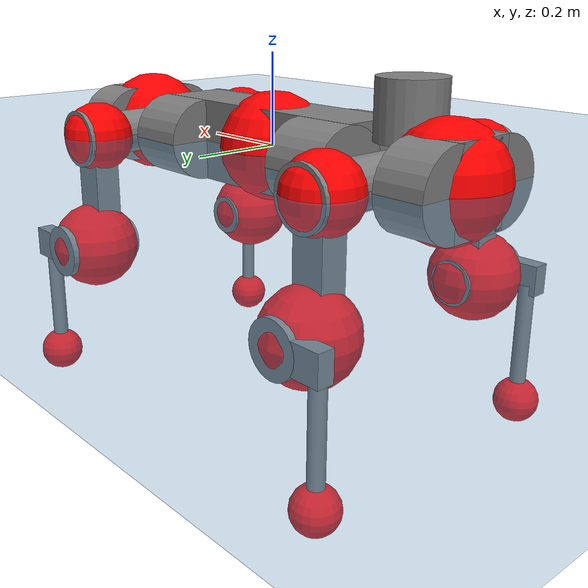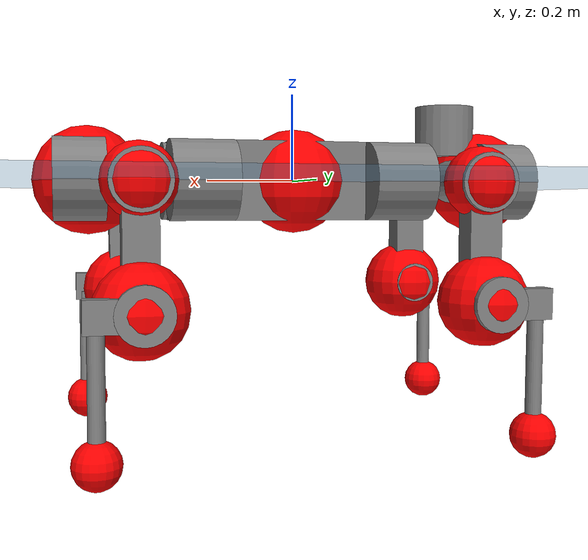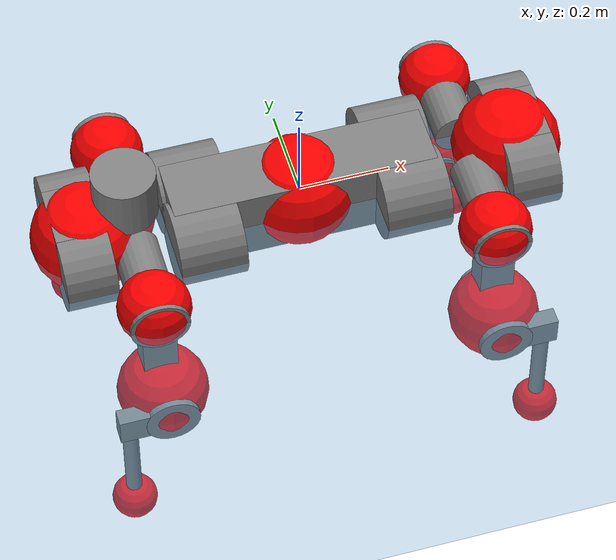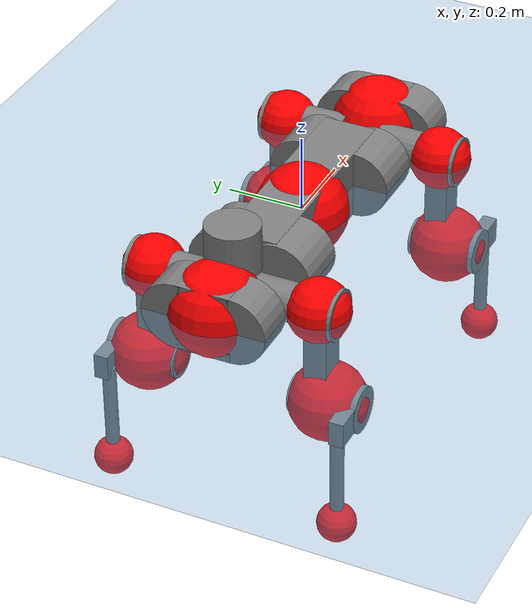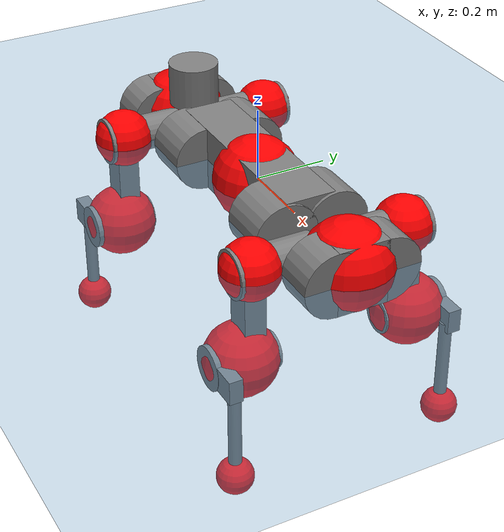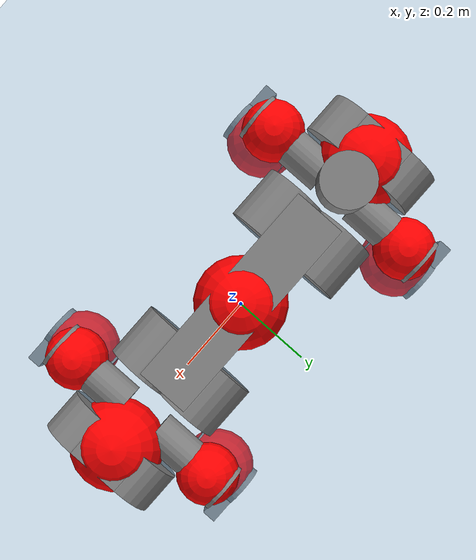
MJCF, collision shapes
<mujoco model="anymal_c">
  <compiler angle="radian" assetdir="assets" balanceinertia="true" inertiafromgeom="false"/>

  <option timestep="0.005" density="1.2" viscosity="2e-05"/>

  <size nkey="1"/>

  <visual>
    <quality shadowsize="8192"/>
    <map shadowclip="0.5"/>
  </visual>

  <default>
    <default class="/">
      <material specular="0" shininess="0.25"/>
      <geom contype="0" conaffinity="0" group="1" solref="-1000 -80"/>
      <site size="0.01 0.005 0.005" group="5"/>
      <general forcelimited="true" forcerange="-80 80" biastype="affine" gainprm="80" biasprm="0 -80 -2"/>
      <default class="anymal_c">
        <joint armature="0.01" damping="0.01" frictionloss="0.1"/>
        <default class="visual">
          <geom type="mesh" group="2"/>
          <default class="visual_zflip"/>
        </default>
        <default class="collision">
          <geom type="cylinder" group="3"/>
          <default class="foot">
            <geom size="0.03 0 0" type="sphere" condim="6" priority="1" friction="0.8 0.02 0.01" solimp="0.015 1 0.03"/>
          </default>
        </default>
      </default>
      <default class="reward_collision_sphere">
        <geom group="5" rgba="1 0 0 1"/>
      </default>
    </default>
  </default>

  <asset>
    <texture type="skybox" colorspace="auto" name="//unnamed_texture_0" builtin="gradient" rgb1="0.95 0.95 0.95" rgb2="0.95 0.95 0.95" width="100" height="600"/>
    <texture type="2d" colorspace="auto" name="texplane" builtin="checker" rgb1="0.345 0.575 0.748" rgb2="0.345 0.575 0.748" markrgb="1 1 1" width="512" height="512"/>
    <texture type="2d" colorspace="linear" name="base" file="base.png"/>
    <texture type="2d" colorspace="linear" name="top_shell" file="top_shell.png"/>
    <texture type="2d" colorspace="linear" name="bottom_shell" file="bottom_shell.png"/>
    <texture type="2d" colorspace="linear" name="remote" file="remote.png"/>
    <texture type="2d" colorspace="linear" name="hatch" file="hatch.png"/>
    <texture type="2d" colorspace="linear" name="handle" file="handle.png"/>
    <texture type="2d" colorspace="linear" name="face" file="face.png"/>
    <texture type="2d" colorspace="linear" name="battery" file="battery.png"/>
    <texture type="2d" colorspace="linear" name="lidar_cage" file="lidar_cage.png"/>
    <texture type="2d" colorspace="linear" name="depth_camera" file="depth_camera.png"/>
    <texture type="2d" colorspace="linear" name="wide_angle_camera" file="wide_angle_camera.png"/>
    <texture type="2d" colorspace="linear" name="lidar" file="lidar.png"/>
    <texture type="2d" colorspace="linear" name="drive" file="drive.png"/>
    <texture type="2d" colorspace="linear" name="hip_l" file="hip_l.png"/>
    <texture type="2d" colorspace="linear" name="shank_l" file="shank_l.png"/>
    <texture type="2d" colorspace="linear" name="foot" file="foot.png"/>
    <texture type="2d" colorspace="linear" name="thigh" file="thigh.png"/>
    <texture type="2d" colorspace="linear" name="shank_r" file="shank_r.png"/>
    <texture type="2d" colorspace="linear" name="hip_r" file="hip_r.png"/>
    <material name="MatPlane" class="/" texture="texplane" texuniform="true" texrepeat="2 2" specular="0.9" shininess="0.5"/>
    <material name="black_plastic" class="/" rgba="0.007 0.007 0.007 1"/>
    <material name="green" class="/" rgba="0.052 0.178 0.033 1"/>
    <material name="red" class="/" rgba="0.178 0.006 0.005 1"/>
    <material name="yellow" class="/" rgba="0.178 0.119 0.006 1"/>
    <material name="lwl" class="/" rgba="0.8 0.8 0.8 1"/>
    <material name="base" class="/" texture="base"/>
    <material name="top_shell" class="/" texture="top_shell"/>
    <material name="bottom_shell" class="/" texture="bottom_shell"/>
    <material name="hip_l" class="/" texture="hip_l"/>
    <material name="thigh" class="/" texture="thigh"/>
    <material name="shank_l" class="/" texture="shank_l"/>
    <material name="foot" class="/" texture="foot"/>
    <material name="hip_r" class="/" texture="hip_r"/>
    <material name="shank" class="/" texture="shank_r"/>
    <material name="hatch" class="/" texture="hatch"/>
    <material name="remote" class="/" texture="remote"/>
    <material name="handle" class="/" texture="handle"/>
    <material name="face" class="/" texture="face"/>
    <material name="depth_camera" class="/" texture="depth_camera"/>
    <material name="wide_angle_camera" class="/" texture="wide_angle_camera"/>
    <material name="battery" class="/" texture="battery"/>
    <material name="lidar_cage" class="/" texture="lidar_cage"/>
    <material name="lidar" class="/" texture="lidar"/>
    <material name="drive" class="/" texture="drive"/>
    <mesh name="base_0" class="/" file="base_0.obj"/>
    <mesh name="base_1" class="/" file="base_1.obj"/>
    <mesh name="base_2" class="/" file="base_2.obj"/>
    <mesh name="base_3" class="/" file="base_3.obj"/>
    <mesh name="base_4" class="/" file="base_4.obj"/>
    <mesh name="base_5" class="/" file="base_5.obj"/>
    <mesh name="top_shell" class="/" file="top_shell.obj"/>
    <mesh name="bottom_shell" class="/" file="bottom_shell.obj"/>
    <mesh name="remote" class="/" file="remote.obj"/>
    <mesh name="handle" class="/" file="handle.obj"/>
    <mesh name="face" class="/" file="face.obj"/>
    <mesh name="wide_angle_camera" class="/" file="wide_angle_camera.obj"/>
    <mesh name="depth_camera" class="/" file="depth_camera.obj"/>
    <mesh name="battery" class="/" file="battery.obj"/>
    <mesh name="lidar_cage" class="/" file="lidar_cage.obj"/>
    <mesh name="lidar" class="/" file="lidar.obj"/>
    <mesh name="drive" class="/" file="drive.obj"/>
    <mesh name="hip_l" class="/" file="hip_l.obj"/>
    <mesh name="thigh" class="/" file="thigh.obj"/>
    <mesh name="shank_l" class="/" file="shank_l.obj"/>
    <mesh name="foot" class="/" file="foot.obj"/>
    <mesh name="hip_r" class="/" file="hip_r.obj"/>
    <mesh name="hatch" class="/" file="hatch.obj"/>
    <mesh name="shank_r" class="/" file="shank_r.obj"/>
  </asset>

  <worldbody>
    <geom name="floor" class="/" size="100 100 0.125" type="plane" group="0" material="MatPlane"/>
    <light name="toplight_shadow" class="/" pos="0 0 5" dir="0.0990148 0.0990148 -0.990148" type="directional" ambient="0.04 0.04 0.04" diffuse="0.55 0.55 0.55" specular="0.12 0.12 0.12"/>
    <light name="toplight_fill" class="/" pos="0 0 5" dir="0.0990148 0.0990148 -0.990148" type="directional" castshadow="false" ambient="0.04 0.04 0.04" diffuse="0.3 0.3 0.3" specular="0.08 0.08 0.08"/>
    <body name="trunk" childclass="anymal_c" pos="-0.00272284 -0.00193181 0.000321613" quat="0.999999 -0.00110437 -0.000540584 0.00012502">
      <inertial pos="-0.000143789 0.000378994 0.0452314" quat="0.50038 0.499803 0.498708 0.501106" mass="18.4834" diaginertia="0.776635 0.74763 0.138133"/>
      <joint name="//unnamed_joint_0" type="free" armature="0" damping="0" frictionloss="0"/>
      <geom name="//unnamed_geom_1" class="visual" material="green" mesh="base_0"/>
      <geom name="//unnamed_geom_2" class="visual" material="yellow" mesh="base_1"/>
      <geom name="//unnamed_geom_3" class="visual" material="red" mesh="base_2"/>
      <geom name="//unnamed_geom_4" class="visual" material="black_plastic" mesh="base_3"/>
      <geom name="//unnamed_geom_5" class="visual" material="lwl" mesh="base_4"/>
      <geom name="//unnamed_geom_6" class="visual" material="base" mesh="base_5"/>
      <geom name="trunk_1" class="collision" size="0.288797 0.0697096 0.0896266" type="box"/>
      <geom name="trunk_2" class="collision" size="0.0896266 0.0721992" pos="0.226051 0.07272 0" quat="0.707107 0 0.707107 0"/>
      <geom name="trunk_3" class="collision" size="0.0896266 0.0721992" pos="-0.226051 0.07272 0" quat="0.707107 0 0.707107 0"/>
      <geom name="trunk_4" class="collision" size="0.0896266 0.0721992" pos="0.226051 -0.07272 0" quat="0.707107 0 0.707107 0"/>
      <geom name="trunk_5" class="collision" size="0.0896266 0.0721992" pos="-0.226051 -0.07272 0" quat="0.707107 0 0.707107 0"/>
      <geom name="//unnamed_geom_12" class="visual" material="top_shell" mesh="top_shell"/>
      <geom name="//unnamed_geom_13" class="visual" material="bottom_shell" mesh="bottom_shell"/>
      <geom name="//unnamed_geom_14" class="visual" material="remote" mesh="remote"/>
      <geom name="//unnamed_geom_15" class="visual" material="handle" mesh="handle"/>
      <geom name="//unnamed_geom_16" class="visual" pos="0.430797 0 0" quat="1 0 0 0" material="face" mesh="face"/>
      <geom name="trunk_6" class="collision" size="0.0547718 0.0697096 0.0896266" pos="0.487959 0 0" type="box"/>
      <geom name="//unnamed_geom_18" class="collision" size="0.0896266 0.0547718" pos="0.487959 0.07272 0" quat="0.707107 0 0.707107 0"/>
      <geom name="//unnamed_geom_19" class="collision" size="0.0896266 0.0547718" pos="0.487959 -0.07272 0" quat="0.707107 0 0.707107 0"/>
      <geom name="//unnamed_geom_20" class="visual" pos="0.479795 0 -0.0255664" quat="0.965926 0 0.258819 0" material="depth_camera" mesh="depth_camera"/>
      <geom name="//unnamed_geom_21" class="visual" pos="0.533169 0 0.0136134" material="wide_angle_camera" mesh="wide_angle_camera"/>
      <geom name="//unnamed_geom_22" class="visual_zflip" pos="-0.430797 0 0" quat="0 0 0 1" material="face" mesh="face"/>
      <geom name="trunk_7" class="collision" size="0.0547718 0.0697096 0.0896266" pos="-0.487959 0 0" quat="0 0 0 1" type="box"/>
      <geom name="//unnamed_geom_24" class="collision" size="0.0896266 0.0547718" pos="-0.487959 -0.07272 0" quat="0 -0.707107 0 0.707107"/>
      <geom name="//unnamed_geom_25" class="collision" size="0.0896266 0.0547718" pos="-0.487959 0.07272 0" quat="0 -0.707107 0 0.707107"/>
      <geom name="//unnamed_geom_26" class="visual" pos="-0.479795 0 -0.0255664" quat="0 -0.258819 0 0.965926" material="depth_camera" mesh="depth_camera"/>
      <geom name="//unnamed_geom_27" class="visual_zflip" pos="-0.533169 0 0.0136134" quat="0 0 0 1" material="wide_angle_camera" mesh="wide_angle_camera"/>
      <geom name="//unnamed_geom_28" class="visual" material="battery" mesh="battery"/>
      <geom name="//unnamed_geom_29" class="visual" pos="0 0.0794196 0.027405" quat="0.683013 -0.183013 0.183013 0.683013" material="depth_camera" mesh="depth_camera"/>
      <geom name="//unnamed_geom_30" class="visual" pos="0 -0.0794196 0.027405" quat="0.683013 0.183013 0.183013 -0.683013" material="depth_camera" mesh="depth_camera"/>
      <geom name="//unnamed_geom_31" class="visual" pos="-0.378311 0 0.0668394" quat="1 0 0 0" material="lidar_cage" mesh="lidar_cage"/>
      <geom name="trunk_8" class="collision" size="0.0697096 0.0597511" pos="-0.378311 0 0.121402"/>
      <geom name="//unnamed_geom_33" class="visual" pos="-0.378311 -1.80724e-07 0.129314" quat="0.707107 0 0 -0.707107" material="lidar" mesh="lidar"/>
      <geom name="//unnamed_geom_34" class="visual" pos="0.311691 0.107995 2.23349e-09" quat="0.258819 0.965926 0 0" material="drive" mesh="drive"/>
      <geom name="//unnamed_geom_35" class="visual" pos="0.311691 -0.107995 -2.23349e-09" quat="0.258819 -0.965926 0 0" material="drive" mesh="drive"/>
      <geom name="//unnamed_geom_36" class="visual" pos="-0.311691 0.107995 -2.23349e-09" quat="0 0 0.965926 -0.258819" material="drive" mesh="drive"/>
      <geom name="//unnamed_geom_37" class="visual" pos="-0.311691 -0.107995 2.23349e-09" quat="0 0 -0.965926 -0.258819" material="drive" mesh="drive"/>
      <geom name="//unnamed_geom_38" class="visual" pos="0.120561 0 0.0663847" quat="1 0 0 0" material="hatch" mesh="hatch"/>
      <geom name="//unnamed_geom_39" class="reward_collision_sphere" size="0.119502"/>
      <geom name="//unnamed_geom_40" class="reward_collision_sphere" size="0.119502" pos="0.467693 0 0"/>
      <geom name="//unnamed_geom_41" class="reward_collision_sphere" size="0.119502" pos="-0.467693 0 0"/>
      <site name="imu" pos="0.26115 0.00606185 0.0471148" size="0.00995851"/>
      <camera name="track" pos="0 -2.07771 0" quat="0.707107 0.707107 0 0" mode="trackcom"/>
      <camera name="ego_camera" pos="0.467693 0 -0.0363752" quat="-0.5 -0.5 0.5 0.5"/>
      <body name="LF_HIP" pos="0.311658 0.107285 0.000416813" quat="0.257761 0.966208 -0.000473592 0.000395972">
        <inertial pos="0.0563017 -0.016212 -0.00817748" quat="-0.127552 0.711313 -0.135907 0.677712" mass="2.85624" diaginertia="0.00741181 0.00593876 0.00213782"/>
        <joint name="LF_HAA" pos="0 0 0" axis="0.999993 -0.00026448 0.00378196" range="-0.726385 0.436719" armature="0.0110997" damping="0.000692955" frictionloss="0.0990842"/>
        <geom name="//unnamed_geom_42" class="visual" pos="0 0.000131386 -2.15801e-05" quat="0.258819 -0.965926 0 0" material="hip_l" mesh="hip_l"/>
        <geom name="//unnamed_geom_43" class="visual" pos="0.0622551 -0.0753832 -0.0425648" quat="0.183013 -0.683013 0.683013 0.183013" material="drive" mesh="drive"/>
        <geom name="//unnamed_geom_44" class="collision" size="0.0497926 0.0697096" pos="0.0622551 -0.0124245 -0.00627927" quat="-0.353553 -0.612372 0.612372 -0.353553"/>
        <body name="LF_THIGH" pos="0.0633244 -0.0771164 -0.0383239" quat="0.182772 -0.682944 0.683103 0.183171">
          <inertial pos="0.034911 0.000527011 -0.220638" quat="0.993291 -0.00445935 -0.0805502 0.0828506" mass="3.06103" diaginertia="0.0365379 0.0355739 0.00260473"/>
          <joint name="LF_HFE" pos="0 0 0" axis="0.999993 -0.00203652 -0.00309123" stiffness="0.0133235" range="-3.19424 3.18287" armature="0.0111014" damping="0" frictionloss="0.102148"/>
          <geom name="//unnamed_geom_45" class="visual" pos="9.15229e-06 1.44219e-08 0" quat="0.707107 0 0 -0.707107" material="thigh" mesh="thigh"/>
          <geom name="//unnamed_geom_46" class="collision" size="0.0647303 0.039834" pos="0.0415727 0 0" quat="0.5 0.5 -0.5 -0.5"/>
          <geom name="//unnamed_geom_47" class="collision" size="0.0373444 0.0298755 0.140728" pos="0.0311795 0 -0.128508" quat="0.707107 0 0 -0.707107" type="box"/>
          <geom name="//unnamed_geom_48" class="visual" pos="0.104243 0 -0.259173" quat="1 0 0 0" material="drive" mesh="drive"/>
          <geom name="//unnamed_geom_49" class="collision" size="0.0497926 0.0697096" pos="0.0314913 0 -0.259173" quat="0.707107 0 0.707107 0"/>
          <geom name="//unnamed_geom_50" class="reward_collision_sphere" size="0.0796681" pos="0.0259829 0 0"/>
          <body name="LF_SHANK" pos="0.103596 -0.000851871 -0.259703" quat="1 -0.000559074 -0.000212989 -0.000448871">
            <inertial pos="0.00689502 -0.0628358 -0.0755914" quat="0.99362 -0.112064 -0.000932498 -0.0126295" mass="0.574536" diaginertia="0.0124534 0.0112711 0.000681826"/>
            <joint name="LF_KFE" pos="0 0 0" axis="0.999983 0.00414921 0.00399304" range="-3.14248 3.08785" armature="0.00948856" damping="0.0101679" frictionloss="0.102501"/>
            <geom name="//unnamed_geom_51" class="visual" pos="2.98436e-06 1.59128e-05 0" quat="0.707107 0 0 -0.707107" material="shank_l" mesh="shank_l"/>
            <geom name="LF_kfe_act" class="collision" size="0.0597511 0.019917" pos="0.0207863 0 0" quat="0.5 0.5 -0.5 -0.5"/>
            <geom name="//unnamed_geom_53" class="collision" size="0.0572604 0.03361 0.0189212" pos="0.0207863 -0.0597332 0" quat="0.5 0.5 -0.5 -0.5" type="box"/>
            <geom name="//unnamed_geom_54" class="visual" pos="0.0135631 -0.0913623 -0.307343" quat="0.382683 0 0 -0.92388" material="foot" mesh="foot"/>
            <geom name="LF_calf" class="collision" size="0.0174274 0.140666" pos="0.0135631 -0.0913674 -0.153672" quat="0.707107 0 0 -0.707107"/>
            <geom name="LF_foot" class="foot" size="0.0317326" pos="0.0135631 -0.0913674 -0.286882" quat="0.707107 0 0 -0.707107"/>
            <geom name="//unnamed_geom_57" class="reward_collision_sphere" size="0.0995851" pos="-0.0519658 0 0"/>
            <geom name="//unnamed_geom_58" class="reward_collision_sphere" size="0.0497926" pos="0.0135631 -0.0913674 -0.286882"/>
            <site name="LF_foot" class="foot" pos="0.0135631 -0.0913674 -0.286882" quat="0.707107 0 0 -0.707107" size="0.00995851"/>
          </body>
        </body>
      </body>
      <body name="RF_HIP" pos="0.312378 -0.106042 0.00187976" quat="0.258885 -0.965908 -8.6696e-06 3.96552e-05">
        <inertial pos="0.0614356 0.015374 -0.0075247" quat="0.136302 0.677545 0.12961 0.711025" mass="2.89551" diaginertia="0.00734019 0.00617505 0.00205536"/>
        <joint name="RF_HAA" pos="0 0 0" axis="1 -0.000262575 -0.000405024" range="-0.472734 0.729381" armature="0.00863864" damping="0.00937652" frictionloss="0.11308"/>
        <geom name="//unnamed_geom_59" class="visual" pos="0 -0.000131385 -2.158e-05" quat="0.258819 0.965926 0 0" material="hip_r" mesh="hip_r"/>
        <geom name="//unnamed_geom_60" class="visual" pos="0.0622551 0.0753832 -0.0425648" quat="0.183013 0.683013 0.683013 -0.183013" material="drive" mesh="drive"/>
        <geom name="//unnamed_geom_61" class="collision" size="0.0497926 0.0697096" pos="0.0622551 0.0124245 -0.00627927" quat="-0.353553 0.612372 0.612372 0.353553"/>
        <body name="RF_THIGH" pos="0.061686 0.0756452 -0.0360212" quat="0.182163 0.683751 0.682665 -0.1824">
          <inertial pos="0.030088 -0.00278938 -0.222015" quat="0.992981 -0.00422072 -0.0778855 0.0889105" mass="2.953" diaginertia="0.036851 0.0363922 0.00253932"/>
          <joint name="RF_HFE" pos="0 0 0" axis="0.999992 0.00382974 -0.000599762" stiffness="0.0079706" range="-3.12426 3.1491" armature="0.00996065" damping="0.00974689" frictionloss="0.0993384"/>
          <geom name="//unnamed_geom_62" class="visual" pos="9.15229e-06 1.44219e-08 0" quat="0.707107 0 0 -0.707107" material="thigh" mesh="thigh"/>
          <geom name="//unnamed_geom_63" class="collision" size="0.0647303 0.039834" pos="0.0415727 0 0" quat="0.5 0.5 0.5 0.5"/>
          <geom name="//unnamed_geom_64" class="collision" size="0.0373444 0.0298755 0.140728" pos="0.0311795 0 -0.128508" quat="0.707107 0 0 0.707107" type="box"/>
          <geom name="//unnamed_geom_65" class="visual" pos="0.104243 0 -0.259173" quat="1 0 0 0" material="drive" mesh="drive"/>
          <geom name="//unnamed_geom_66" class="collision" size="0.0497926 0.0697096" pos="0.0314913 0 -0.259173" quat="0.707107 0 0.707107 0"/>
          <geom name="//unnamed_geom_67" class="reward_collision_sphere" size="0.0796681" pos="0.0259829 0 0"/>
          <body name="RF_SHANK" pos="0.105559 -0.000321056 -0.257404" quat="1 -3.54715e-05 4.29951e-05 -0.000150102">
            <inertial pos="0.00672612 0.0635312 -0.0721779" quat="0.993104 0.114959 0.000498334 0.0230034" mass="0.591753" diaginertia="0.0131285 0.0112335 0.000722844"/>
            <joint name="RF_KFE" pos="0 0 0" axis="0.999906 0.00339013 0.0132947" range="-3.12515 3.14257" armature="0.0101398" damping="0.0125783" frictionloss="0.0942994"/>
            <geom name="//unnamed_geom_68" class="visual" pos="2.98434e-06 -1.59127e-05 0" quat="0.707107 0 0 0.707107" material="shank" mesh="shank_r"/>
            <geom name="RF_kfe_act" class="collision" size="0.0597511 0.019917" pos="0.0207863 0 0" quat="0.5 0.5 0.5 0.5"/>
            <geom name="//unnamed_geom_70" class="collision" size="0.0572604 0.03361 0.0189212" pos="0.0207863 0.0597332 0" quat="0.5 0.5 0.5 0.5" type="box"/>
            <geom name="//unnamed_geom_71" class="visual" pos="0.0135631 0.0913623 -0.307343" quat="0.382683 0 0 0.92388" material="foot" mesh="foot"/>
            <geom name="RF_calf" class="collision" size="0.0174274 0.140666" pos="0.0135631 0.0913674 -0.153672" quat="0.707107 0 0 0.707107"/>
            <geom name="RF_foot" class="foot" size="0.0291737" pos="0.0135631 0.0913674 -0.286882" quat="0.707107 0 0 0.707107"/>
            <geom name="//unnamed_geom_74" class="reward_collision_sphere" size="0.0995851" pos="-0.0519658 0 0"/>
            <geom name="//unnamed_geom_75" class="reward_collision_sphere" size="0.0497926" pos="0.0135631 0.0913674 -0.286882"/>
            <site name="RF_foot" class="foot" pos="0.0135631 0.0913674 -0.286882" quat="0.707107 0 0 0.707107" size="0.00995851"/>
          </body>
        </body>
      </body>
      <body name="LH_HIP" pos="-0.310642 0.106834 0.00173352" quat="0.000424801 0.00105898 0.966041 -0.258387">
        <inertial pos="0.0617434 0.0167862 -0.00765656" quat="0.135727 0.679255 0.127793 0.709831" mass="2.72651" diaginertia="0.00715841 0.00615007 0.00208628"/>
        <joint name="LH_HAA" pos="0 0 0" axis="0.999984 -0.0048966 -0.00276797" range="-0.473482 0.709176" armature="0.0100008" damping="0.00995937" frictionloss="0.0977701"/>
        <geom name="//unnamed_geom_76" class="visual" pos="0 -0.000131385 -2.158e-05" quat="-0.258819 -0.965926 0 0" material="hip_r" mesh="hip_r"/>
        <geom name="//unnamed_geom_77" class="visual" pos="0.0622551 0.0753832 -0.0425648" quat="0.183013 0.683013 0.683013 -0.183013" material="drive" mesh="drive"/>
        <geom name="//unnamed_geom_78" class="collision" size="0.0497926 0.0697096" pos="0.0622551 0.0124245 -0.00627927" quat="-0.353553 0.612372 0.612372 0.353553"/>
        <body name="LH_THIGH" pos="0.0588657 0.0757567 -0.0363158" quat="0.18377 0.682716 0.683329 -0.182178">
          <inertial pos="0.0318252 0.000811633 -0.222392" quat="0.992441 0.00388204 -0.0752432 0.09687" mass="2.93203" diaginertia="0.0362042 0.0350672 0.00257625"/>
          <joint name="LH_HFE" pos="0 0 0" axis="0.999991 -0.00433873 -0.000397345" range="-3.12673 3.13635" armature="0.00917331" damping="0" frictionloss="0.102643"/>
          <geom name="//unnamed_geom_79" class="visual" pos="9.15229e-06 1.44219e-08 0" quat="0.707107 0 0 -0.707107" material="thigh" mesh="thigh"/>
          <geom name="//unnamed_geom_80" class="collision" size="0.0647303 0.039834" pos="0.0415727 0 0" quat="0.5 0.5 -0.5 -0.5"/>
          <geom name="//unnamed_geom_81" class="collision" size="0.0373444 0.0298755 0.140728" pos="0.0311795 0 -0.128508" quat="0.707107 0 0 -0.707107" type="box"/>
          <geom name="//unnamed_geom_82" class="visual" pos="0.104243 0 -0.259173" quat="1 0 0 0" material="drive" mesh="drive"/>
          <geom name="//unnamed_geom_83" class="collision" size="0.0497926 0.0697096" pos="0.0314913 0 -0.259173" quat="0.707107 0 0.707107 0"/>
          <geom name="//unnamed_geom_84" class="reward_collision_sphere" size="0.0796681" pos="0.0259829 0 0"/>
          <body name="LH_SHANK" pos="0.103504 -0.00118178 -0.259134" quat="1 8.51768e-05 0.000180983 5.59348e-05">
            <inertial pos="0.00554279 0.0634466 -0.072246" quat="0.992916 0.116006 -0.00123902 0.0256774" mass="0.577227" diaginertia="0.0123421 0.0112242 0.000690238"/>
            <joint name="LH_KFE" pos="0 0 0" axis="0.999998 0.00128231 0.00162338" range="-3.12268 3.13886" armature="0.00997243" damping="0" frictionloss="0.097163"/>
            <geom name="//unnamed_geom_85" class="visual" pos="2.98434e-06 -1.59127e-05 0" quat="-0.707107 0 0 -0.707107" material="shank" mesh="shank_r"/>
            <geom name="LH_kfe_act" class="collision" size="0.0597511 0.019917" pos="0.0207863 0 0" quat="0.5 0.5 -0.5 -0.5"/>
            <geom name="//unnamed_geom_87" class="collision" size="0.0572604 0.03361 0.0189212" pos="0.0207863 0.0597332 0" quat="0.5 0.5 -0.5 -0.5" type="box"/>
            <geom name="//unnamed_geom_88" class="visual" pos="0.0135631 0.0913623 -0.307343" quat="-0.382683 0 0 -0.92388" material="foot" mesh="foot"/>
            <geom name="LH_calf" class="collision" size="0.0174274 0.140666" pos="0.0135631 0.0913674 -0.153672" quat="0.707107 0 0 -0.707107"/>
            <geom name="LH_foot" class="foot" size="0.0329186" pos="0.0135631 0.0913674 -0.286882" quat="0.707107 0 0 -0.707107"/>
            <geom name="//unnamed_geom_91" class="reward_collision_sphere" size="0.0995851" pos="-0.0519658 0 0"/>
            <geom name="//unnamed_geom_92" class="reward_collision_sphere" size="0.0497926" pos="0.0135631 0.0913674 -0.286882"/>
            <site name="LH_foot" class="foot" pos="0.0135631 0.0913674 -0.286882" quat="0.707107 0 0 -0.707107" size="0.00995851"/>
          </body>
        </body>
      </body>
      <body name="RH_HIP" pos="-0.312408 -0.110518 0.00260723" quat="0.00027374 0.000896254 -0.965791 -0.259321">
        <inertial pos="0.0588582 -0.0136094 -0.00760789" quat="-0.136735 0.714932 -0.139495 0.671354" mass="2.72891" diaginertia="0.00717076 0.00603537 0.00204377"/>
        <joint name="RH_HAA" pos="0 0 0" axis="0.999991 -0.00140524 -0.00392547" stiffness="0.00849153" range="-0.738656 0.492845" armature="0.0114376" damping="0.0221687" frictionloss="0.0864194"/>
        <geom name="//unnamed_geom_93" class="visual" pos="0 0.000131386 -2.15801e-05" quat="-0.258819 0.965926 0 0" material="hip_l" mesh="hip_l"/>
        <geom name="//unnamed_geom_94" class="visual" pos="0.0622551 -0.0753832 -0.0425648" quat="-0.183013 0.683013 -0.683013 -0.183013" material="drive" mesh="drive"/>
        <geom name="//unnamed_geom_95" class="collision" size="0.0497926 0.0697096" pos="0.0622551 -0.0124245 -0.00627927" quat="0.353553 0.612372 -0.612372 0.353553"/>
        <body name="RH_THIGH" pos="0.0622283 -0.0747367 -0.0405968" quat="-0.183046 0.683001 -0.683013 -0.183022">
          <inertial pos="0.0319389 -0.000714067 -0.222817" quat="0.993099 -0.00532558 -0.0821639 0.0835168" mass="3.03426" diaginertia="0.0369484 0.0365002 0.00252807"/>
          <joint name="RH_HFE" pos="0 0 0" axis="0.999987 0.00406471 -0.00295301" range="-3.1949 3.17372" armature="0.0103872" damping="0.0135474" frictionloss="0.104749"/>
          <geom name="//unnamed_geom_96" class="visual" pos="9.15229e-06 1.44219e-08 0" quat="0.707107 0 0 -0.707107" material="thigh" mesh="thigh"/>
          <geom name="//unnamed_geom_97" class="collision" size="0.0647303 0.039834" pos="0.0415727 0 0" quat="0.5 0.5 0.5 0.5"/>
          <geom name="//unnamed_geom_98" class="collision" size="0.0373444 0.0298755 0.140728" pos="0.0311795 0 -0.128508" quat="0.707107 0 0 0.707107" type="box"/>
          <geom name="//unnamed_geom_99" class="visual" pos="0.104243 0 -0.259173" quat="1 0 0 0" material="drive" mesh="drive"/>
          <geom name="//unnamed_geom_100" class="collision" size="0.0497926 0.0697096" pos="0.0314913 0 -0.259173" quat="0.707107 0 0.707107 0"/>
          <geom name="//unnamed_geom_101" class="reward_collision_sphere" size="0.0796681" pos="0.0259829 0 0"/>
          <body name="RH_SHANK" pos="0.101317 0.00254404 -0.259729" quat="1 0.000183572 0.00013873 0.000452031">
            <inertial pos="0.0083138 -0.0636339 -0.0724699" quat="0.992799 -0.116747 -0.00119789 -0.0268098" mass="0.579994" diaginertia="0.0120459 0.0105207 0.000687131"/>
            <joint name="RH_KFE" pos="0 0 0" axis="0.999991 0.000466538 0.00421362" range="-3.08062 3.18689" armature="0.00867602" damping="0.00345566" frictionloss="0.0946489"/>
            <geom name="//unnamed_geom_102" class="visual" pos="2.98436e-06 1.59128e-05 0" quat="0.707107 0 0 -0.707107" material="shank_l" mesh="shank_l"/>
            <geom name="RH_kfe_act" class="collision" size="0.0597511 0.019917" pos="0.0207863 0 0" quat="0.5 0.5 0.5 0.5"/>
            <geom name="//unnamed_geom_104" class="collision" size="0.0572604 0.03361 0.0189212" pos="0.0207863 -0.0597332 0" quat="0.5 0.5 0.5 0.5" type="box"/>
            <geom name="//unnamed_geom_105" class="visual" pos="0.0135631 -0.0913623 -0.307343" quat="0.382683 0 0 -0.92388" material="foot" mesh="foot"/>
            <geom name="RH_calf" class="collision" size="0.0174274 0.140666" pos="0.0135631 -0.0913674 -0.153672" quat="0.707107 0 0 0.707107"/>
            <geom name="RH_foot" class="foot" size="0.0302064" pos="0.0135631 -0.0913674 -0.286882" quat="0.707107 0 0 0.707107"/>
            <geom name="//unnamed_geom_108" class="reward_collision_sphere" size="0.0995851" pos="-0.0519658 0 0"/>
            <geom name="//unnamed_geom_109" class="reward_collision_sphere" size="0.0497926" pos="0.0135631 -0.0913674 -0.286882"/>
            <site name="RH_foot" class="foot" pos="0.0135631 -0.0913674 -0.286882" quat="0.707107 0 0 0.707107" size="0.00995851"/>
          </body>
        </body>
      </body>
    </body>
  </worldbody>

  <contact>
    <pair class="/" geom1="floor" geom2="LF_foot" name="//unnamed_contact_0"/>
    <pair class="/" geom1="floor" geom2="RF_foot" name="//unnamed_contact_1"/>
    <pair class="/" geom1="floor" geom2="LH_foot" name="//unnamed_contact_2"/>
    <pair class="/" geom1="floor" geom2="RH_foot" name="//unnamed_contact_3"/>
  </contact>

  <actuator>
    <general name="LF_HAA" class="/" joint="LF_HAA" forcerange="-79.5141 79.5141" gainprm="80.4211" biasprm="0 -80.4211 -1.88783"/>
    <general name="LF_HFE" class="/" joint="LF_HFE" forcerange="-78.2022 78.2022" gainprm="80.4211" biasprm="0 -80.4211 -1.88783"/>
    <general name="LF_KFE" class="/" joint="LF_KFE" forcerange="-80.118 80.118" gainprm="80.4211" biasprm="0 -80.4211 -1.88783"/>
    <general name="RF_HAA" class="/" joint="RF_HAA" forcerange="-87.949 87.949" gainprm="80.4211" biasprm="0 -80.4211 -1.88783"/>
    <general name="RF_HFE" class="/" joint="RF_HFE" forcerange="-79.9463 79.9463" gainprm="80.4211" biasprm="0 -80.4211 -1.88783"/>
    <general name="RF_KFE" class="/" joint="RF_KFE" forcerange="-73.4206 73.4206" gainprm="80.4211" biasprm="0 -80.4211 -1.88783"/>
    <general name="LH_HAA" class="/" joint="LH_HAA" forcerange="-79.5929 79.5929" gainprm="80.4211" biasprm="0 -80.4211 -1.88783"/>
    <general name="LH_HFE" class="/" joint="LH_HFE" forcerange="-79.8204 79.8204" gainprm="80.4211" biasprm="0 -80.4211 -1.88783"/>
    <general name="LH_KFE" class="/" joint="LH_KFE" forcerange="-80.8387 80.8387" gainprm="80.4211" biasprm="0 -80.4211 -1.88783"/>
    <general name="RH_HAA" class="/" joint="RH_HAA" forcerange="-77.7136 77.7136" gainprm="80.4211" biasprm="0 -80.4211 -1.88783"/>
    <general name="RH_HFE" class="/" joint="RH_HFE" forcerange="-82.5921 82.5921" gainprm="80.4211" biasprm="0 -80.4211 -1.88783"/>
    <general name="RH_KFE" class="/" joint="RH_KFE" forcerange="-87.9832 87.9832" gainprm="80.4211" biasprm="0 -80.4211 -1.88783"/>
  </actuator>

  <sensor>
    <gyro site="imu" name="imu_angular_velocity"/>
    <velocimeter site="imu" name="imu_linear_velocity"/>
    <framelinvel objtype="site" objname="LF_foot" name="LF_foot_global_linear_velocity"/>
    <framelinvel objtype="site" objname="RF_foot" name="RF_foot_global_linear_velocity"/>
    <framelinvel objtype="site" objname="LH_foot" name="LH_foot_global_linear_velocity"/>
    <framelinvel objtype="site" objname="RH_foot" name="RH_foot_global_linear_velocity"/>
  </sensor>

  <keyframe>
    <key name="home" qpos="0 0 0.55 1 0 0 0 0 0.4 -0.8 0 -0.4 0.8 0 -0.4 0.8 0 0.4 -0.8"/>
  </keyframe>
</mujoco>
